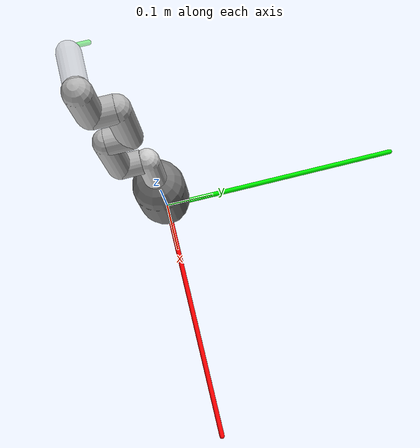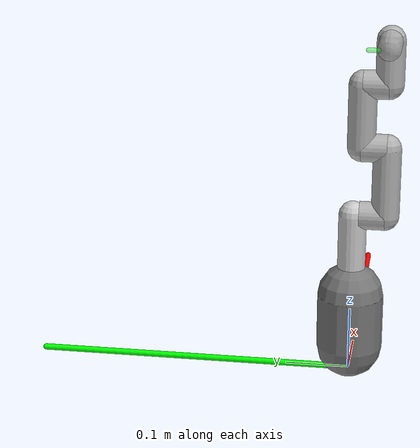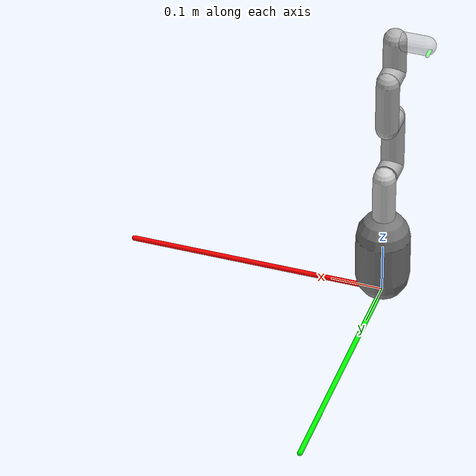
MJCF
<?xml version="1.0" ?>
<mujoco>
  <option gravity="0 0 0" integrator="implicitfast" timestep="0.002" cone="elliptic" impratio="3" noslip_iterations="6"/>
    <compiler angle="degree"/>
    <visual>
        <headlight active="0"/>
    </visual>

    <worldbody>
        <light cutoff="100" ambient=".3 .3 .3" diffuse="1 1 1" specular=".8 .8 .8" directional="false" pos="5 -3 7" castshadow="false"/>
        <light cutoff="100" ambient=".2 .2 .2" diffuse=".6 .6 .6" specular=".7 .7 .7" directional="false" pos="-3 -7 4" castshadow="false"/>

        <body>
            <geom type="capsule" fromto="0 0 0  .5 0 0" size="0.005" contype="0" conaffinity="0" mass="1" rgba="1 0 0 1"/>
            <geom type="capsule" fromto="0 0 0  0 .5 0" size="0.005" contype="0" conaffinity="0" mass="1" rgba="0 1 0 1"/>
        </body>
        <body name = "A" pos="0 0 0">
            <geom type="capsule" size="0.052" fromto="0 0 0.04 0 0 0.126" rgba="0.47 0.47 0.47 1"/>
            <geom type="capsule" size="0.022" fromto="0 0 0.1 0 0 0.26" contype="0" conaffinity="0" rgba="0.8 .8 .8 1"/>
            <joint name="joint1" type="hinge" range="-165 165" axis="0 0 1"/>
            <body name="B" pos="0 -.05 .26">
                <geom type="capsule" size="0.022" fromto="0 0 0 0 0 0.11" rgba="0.7 0.7 0.7 1"/>
                <geom type="cylinder" size="0.0221" fromto="0 0 0 0 0.04 0" rgba="0.7 0.7 0.7 1"/>
                <joint name="joint2" type="hinge" range="-165 165" axis="0 1 0"/>
                <body name="C" pos="0 0.04 0.11">
                    <geom type="capsule" size="0.022" fromto="0 0 0 0 0 0.1" rgba="0.7 0.7 0.7 1"/>
                    <geom type="cylinder" size="0.0221" fromto="0 0 0 0 -.04 0" rgba="0.7 0.7 0.7 1"/>
                    <joint name="joint3" type="hinge" range="-165 165" axis="0 1 0"/>
                    <body name="D" pos="0 -.04 0.1">
                        <joint name="joint4" type="hinge" range="-165 165" axis="0 1 0"/>
                        <geom type="capsule" size="0.022" fromto="0 0 0 0 0 0.07" rgba="0.7 0.7 0.7 1"/>
                        <geom type="cylinder" size="0.0221" fromto="0 0 0 0 0.04 0" rgba="0.7 0.7 0.7 1"/>
                        <body name="E" pos="0 0 0.07">
                            <joint name="joint5" type="hinge" range="-165 165" axis="0 0 1"/>
                            <geom type="capsule" size="0.018" fromto="0 0 0 -.06 0 0" contype="0" conaffinity="0" rgba="0.7 0.7 0.7 0.45"/>
                            <body name="F" pos="-.07 0 0">
                                <joint name="joint6" type="hinge" range="-180 180" axis="1 0 0"/>
                                <body name="end_effector" pos="0 0 0">
                                    <geom type="capsule" fromto="0 0 0  .05 0 0" size="0.0035" contype="0" conaffinity="0" mass="1" rgba="1 0 0 .41"/>
                                    <geom type="capsule" fromto="0 0 0  0 .03 0" size="0.0035" contype="0" conaffinity="0" mass="1" rgba="0 1 0 .41"/>
                                    <geom type="capsule" size="0.012" fromto=".01 0 0 0.05 0 0" contype="0" conaffinity="0" rgba="1 .8 0 .66"/>
`
                                </body>
                            </body>
                        </body>
                    </body>
                </body>
            </body>
        </body>
    </worldbody>

    <actuator>
        <position name="BASE_A" inheritrange="1" kp="60" kv="12" joint="joint1"/>
        <position name="A_B" inheritrange="1" kp="120" kv="24" joint="joint2"/>
        <position name="B_C" inheritrange="1" kp="60" kv="12" joint="joint3"/>
        <position name="C_D" inheritrange="1" kp="60" kv="12" joint="joint4"/>
        <position name="D_E" inheritrange="1" kp="20" kv="4" joint="joint5"/>
        <position name="E_F" inheritrange="1" kp="6" kv="1" joint="joint6"/>
    </actuator>
</mujoco>
